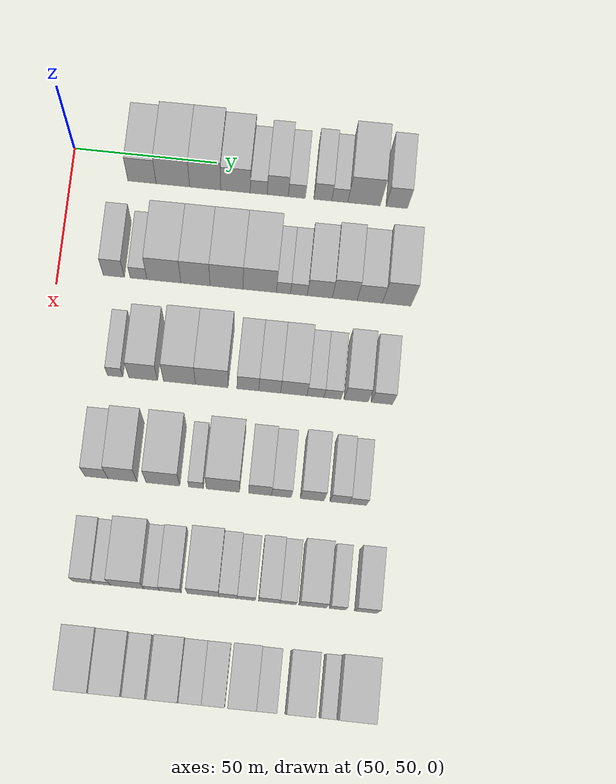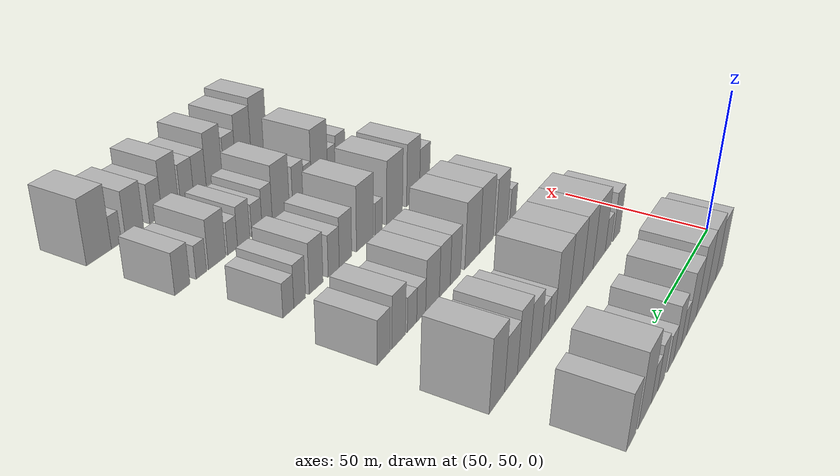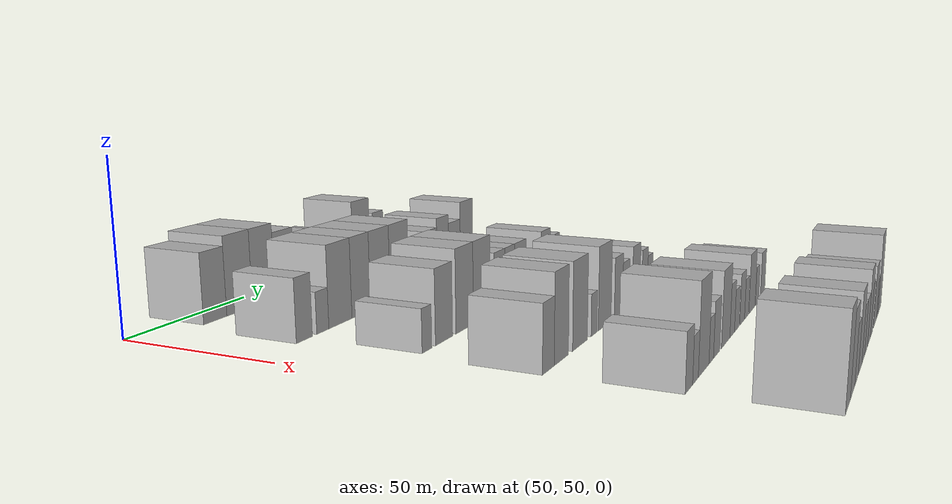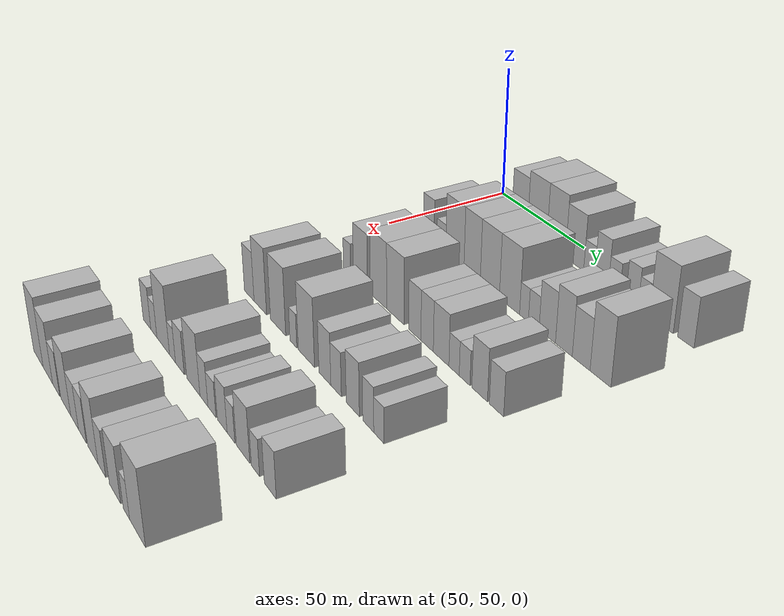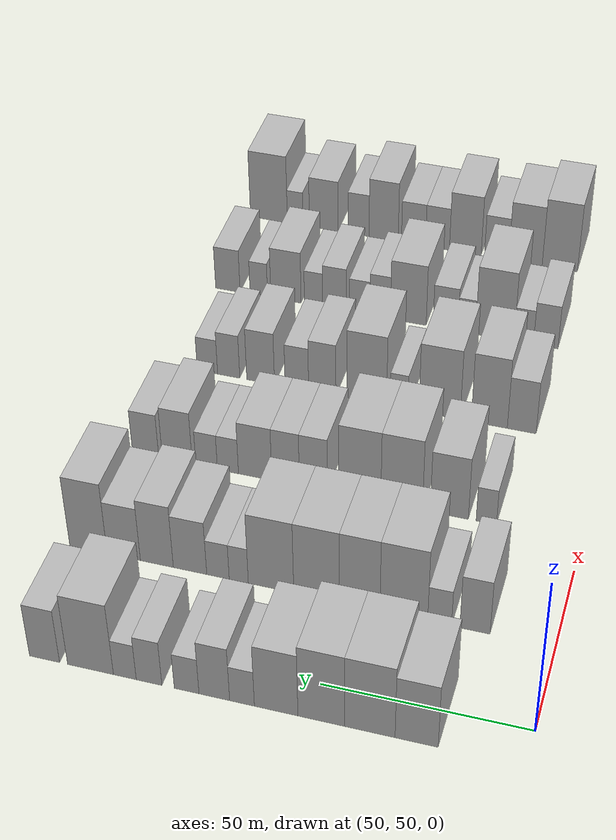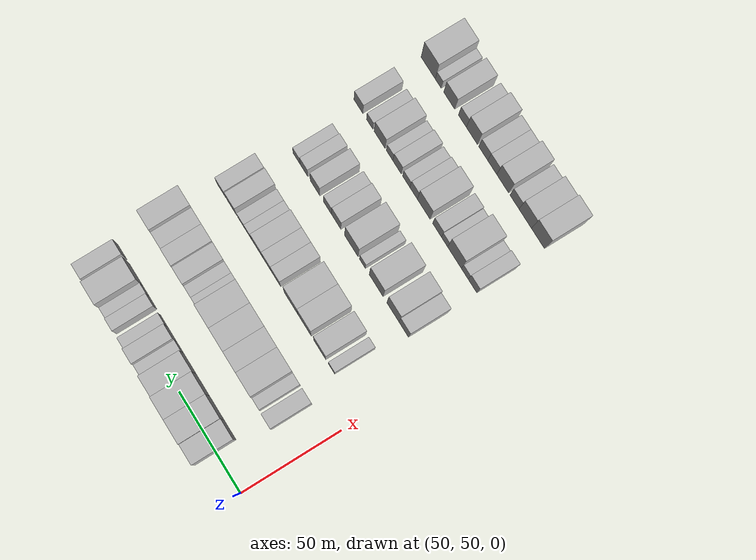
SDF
<sdf version="1.6">
 <world name="default">
  <model name="building_68">
   <static>1</static>
   <pose>50.0000 74.9641 0 0.000000 0.000000 0.000000</pose>
   <link name="link">
    <pose>0 0 10.50 0 0 0</pose>
    <collision name="collision"><geometry><box><size>20.0000 9.9061 21.0000</size></box></geometry></collision>
    <visual name="visual">
     <cast_shadows>0</cast_shadows>
     <geometry><box><size>20.0000 9.9061 21.0000</size></box></geometry>
     <material>
      <script>
       <uri>model://HANNAS_wall/materials/scripts</uri>
       <uri>model://HANNAS_wall/materials/textures</uri>
       <name>vrc/HANNAS_wall</name>
      </script>
     </material>
    </visual>
   </link>
  </model>
  <model name="building_69">
   <static>1</static>
   <pose>50.0000 85.7738 0 0.000000 0.000000 0.000000</pose>
   <link name="link">
    <pose>0 0 12.00 0 0 0</pose>
    <collision name="collision"><geometry><box><size>20.0000 11.7132 24.0000</size></box></geometry></collision>
    <visual name="visual">
     <cast_shadows>0</cast_shadows>
     <geometry><box><size>20.0000 11.7132 24.0000</size></box></geometry>
     <material>
      <script>
       <uri>model://HANNAS_wall/materials/scripts</uri>
       <uri>model://HANNAS_wall/materials/textures</uri>
       <name>vrc/HANNAS_wall</name>
      </script>
     </material>
    </visual>
   </link>
  </model>
  <model name="building_70">
   <static>1</static>
   <pose>50.0000 97.0943 0 0.000000 0.000000 0.000000</pose>
   <link name="link">
    <pose>0 0 12.00 0 0 0</pose>
    <collision name="collision"><geometry><box><size>20.0000 10.9279 24.0000</size></box></geometry></collision>
    <visual name="visual">
     <cast_shadows>0</cast_shadows>
     <geometry><box><size>20.0000 10.9279 24.0000</size></box></geometry>
     <material>
      <script>
       <uri>model://HANNAS_wall/materials/scripts</uri>
       <uri>model://HANNAS_wall/materials/textures</uri>
       <name>vrc/HANNAS_wall</name>
      </script>
     </material>
    </visual>
   </link>
  </model>
  <model name="building_71">
   <static>1</static>
   <pose>50.0000 107.7116 0 0.000000 0.000000 0.000000</pose>
   <link name="link">
    <pose>0 0 10.50 0 0 0</pose>
    <collision name="collision"><geometry><box><size>20.0000 10.3067 21.0000</size></box></geometry></collision>
    <visual name="visual">
     <cast_shadows>0</cast_shadows>
     <geometry><box><size>20.0000 10.3067 21.0000</size></box></geometry>
     <material>
      <script>
       <uri>model://HANNAS_wall/materials/scripts</uri>
       <uri>model://HANNAS_wall/materials/textures</uri>
       <name>vrc/HANNAS_wall</name>
      </script>
     </material>
    </visual>
   </link>
  </model>
  <model name="building_72">
   <static>1</static>
   <pose>50.0000 115.8207 0 0.000000 0.000000 0.000000</pose>
   <link name="link">
    <pose>0 0 6.00 0 0 0</pose>
    <collision name="collision"><geometry><box><size>20.0000 5.9115 12.0000</size></box></geometry></collision>
    <visual name="visual">
     <cast_shadows>0</cast_shadows>
     <geometry><box><size>20.0000 5.9115 12.0000</size></box></geometry>
     <material>
      <script>
       <uri>model://HANNAS_wall/materials/scripts</uri>
       <uri>model://HANNAS_wall/materials/textures</uri>
       <name>vrc/HANNAS_wall</name>
      </script>
     </material>
    </visual>
   </link>
  </model>
  <model name="building_73">
   <static>1</static>
   <pose>50.0000 122.4557 0 0.000000 0.000000 0.000000</pose>
   <link name="link">
    <pose>0 0 9.00 0 0 0</pose>
    <collision name="collision"><geometry><box><size>20.0000 7.3585 18.0000</size></box></geometry></collision>
    <visual name="visual">
     <cast_shadows>0</cast_shadows>
     <geometry><box><size>20.0000 7.3585 18.0000</size></box></geometry>
     <material>
      <script>
       <uri>model://HANNAS_wall/materials/scripts</uri>
       <uri>model://HANNAS_wall/materials/textures</uri>
       <name>vrc/HANNAS_wall</name>
      </script>
     </material>
    </visual>
   </link>
  </model>
  <model name="building_74">
   <static>1</static>
   <pose>50.0000 129.1196 0 0.000000 0.000000 0.000000</pose>
   <link name="link">
    <pose>0 0 6.00 0 0 0</pose>
    <collision name="collision"><geometry><box><size>20.0000 5.9692 12.0000</size></box></geometry></collision>
    <visual name="visual">
     <cast_shadows>0</cast_shadows>
     <geometry><box><size>20.0000 5.9692 12.0000</size></box></geometry>
     <material>
      <script>
       <uri>model://HANNAS_wall/materials/scripts</uri>
       <uri>model://HANNAS_wall/materials/textures</uri>
       <name>vrc/HANNAS_wall</name>
      </script>
     </material>
    </visual>
   </link>
  </model>
  <model name="building_75">
   <static>1</static>
   <pose>50.0000 138.2283 0 0.000000 0.000000 0.000000</pose>
   <link name="link">
    <pose>0 0 7.50 0 0 0</pose>
    <collision name="collision"><geometry><box><size>20.0000 6.2482 15.0000</size></box></geometry></collision>
    <visual name="visual">
     <cast_shadows>0</cast_shadows>
     <geometry><box><size>20.0000 6.2482 15.0000</size></box></geometry>
     <material>
      <script>
       <uri>model://HANNAS_wall/materials/scripts</uri>
       <uri>model://HANNAS_wall/materials/textures</uri>
       <name>vrc/HANNAS_wall</name>
      </script>
     </material>
    </visual>
   </link>
  </model>
  <model name="building_76">
   <static>1</static>
   <pose>50.0000 144.1504 0 0.000000 0.000000 0.000000</pose>
   <link name="link">
    <pose>0 0 6.00 0 0 0</pose>
    <collision name="collision"><geometry><box><size>20.0000 5.5962 12.0000</size></box></geometry></collision>
    <visual name="visual">
     <cast_shadows>0</cast_shadows>
     <geometry><box><size>20.0000 5.5962 12.0000</size></box></geometry>
     <material>
      <script>
       <uri>model://HANNAS_wall/materials/scripts</uri>
       <uri>model://HANNAS_wall/materials/textures</uri>
       <name>vrc/HANNAS_wall</name>
      </script>
     </material>
    </visual>
   </link>
  </model>
  <model name="building_77">
   <static>1</static>
   <pose>50.0000 152.6095 0 0.000000 0.000000 0.000000</pose>
   <link name="link">
    <pose>0 0 12.00 0 0 0</pose>
    <collision name="collision"><geometry><box><size>20.0000 11.3219 24.0000</size></box></geometry></collision>
    <visual name="visual">
     <cast_shadows>0</cast_shadows>
     <geometry><box><size>20.0000 11.3219 24.0000</size></box></geometry>
     <material>
      <script>
       <uri>model://HANNAS_wall/materials/scripts</uri>
       <uri>model://HANNAS_wall/materials/textures</uri>
       <name>vrc/HANNAS_wall</name>
      </script>
     </material>
    </visual>
   </link>
  </model>
  <model name="building_78">
   <static>1</static>
   <pose>50.0000 164.0153 0 0.000000 0.000000 0.000000</pose>
   <link name="link">
    <pose>0 0 9.00 0 0 0</pose>
    <collision name="collision"><geometry><box><size>20.0000 7.4899 18.0000</size></box></geometry></collision>
    <visual name="visual">
     <cast_shadows>0</cast_shadows>
     <geometry><box><size>20.0000 7.4899 18.0000</size></box></geometry>
     <material>
      <script>
       <uri>model://HANNAS_wall/materials/scripts</uri>
       <uri>model://HANNAS_wall/materials/textures</uri>
       <name>vrc/HANNAS_wall</name>
      </script>
     </material>
    </visual>
   </link>
  </model>
  <model name="building_201">
   <static>1</static>
   <pose>85.0000 69.3820 0 0.000000 0.000000 0.000000</pose>
   <link name="link">
    <pose>0 0 9.00 0 0 0</pose>
    <collision name="collision"><geometry><box><size>20.0000 7.2986 18.0000</size></box></geometry></collision>
    <visual name="visual">
     <cast_shadows>0</cast_shadows>
     <geometry><box><size>20.0000 7.2986 18.0000</size></box></geometry>
     <material>
      <script>
       <uri>model://HANNAS_wall/materials/scripts</uri>
       <uri>model://HANNAS_wall/materials/textures</uri>
       <name>vrc/HANNAS_wall</name>
      </script>
     </material>
    </visual>
   </link>
  </model>
  <model name="building_202">
   <static>1</static>
   <pose>85.0000 77.9362 0 0.000000 0.000000 0.000000</pose>
   <link name="link">
    <pose>0 0 6.00 0 0 0</pose>
    <collision name="collision"><geometry><box><size>20.0000 5.8098 12.0000</size></box></geometry></collision>
    <visual name="visual">
     <cast_shadows>0</cast_shadows>
     <geometry><box><size>20.0000 5.8098 12.0000</size></box></geometry>
     <material>
      <script>
       <uri>model://HANNAS_wall/materials/scripts</uri>
       <uri>model://HANNAS_wall/materials/textures</uri>
       <name>vrc/HANNAS_wall</name>
      </script>
     </material>
    </visual>
   </link>
  </model>
  <model name="building_203">
   <static>1</static>
   <pose>85.0000 86.6924 0 0.000000 0.000000 0.000000</pose>
   <link name="link">
    <pose>0 0 12.00 0 0 0</pose>
    <collision name="collision"><geometry><box><size>20.0000 11.7027 24.0000</size></box></geometry></collision>
    <visual name="visual">
     <cast_shadows>0</cast_shadows>
     <geometry><box><size>20.0000 11.7027 24.0000</size></box></geometry>
     <material>
      <script>
       <uri>model://HANNAS_wall/materials/scripts</uri>
       <uri>model://HANNAS_wall/materials/textures</uri>
       <name>vrc/HANNAS_wall</name>
      </script>
     </material>
    </visual>
   </link>
  </model>
  <model name="building_204">
   <static>1</static>
   <pose>85.0000 97.5682 0 0.000000 0.000000 0.000000</pose>
   <link name="link">
    <pose>0 0 12.00 0 0 0</pose>
    <collision name="collision"><geometry><box><size>20.0000 10.0490 24.0000</size></box></geometry></collision>
    <visual name="visual">
     <cast_shadows>0</cast_shadows>
     <geometry><box><size>20.0000 10.0490 24.0000</size></box></geometry>
     <material>
      <script>
       <uri>model://HANNAS_wall/materials/scripts</uri>
       <uri>model://HANNAS_wall/materials/textures</uri>
       <name>vrc/HANNAS_wall</name>
      </script>
     </material>
    </visual>
   </link>
  </model>
  <model name="building_205">
   <static>1</static>
   <pose>85.0000 108.2887 0 0.000000 0.000000 0.000000</pose>
   <link name="link">
    <pose>0 0 12.00 0 0 0</pose>
    <collision name="collision"><geometry><box><size>20.0000 11.3919 24.0000</size></box></geometry></collision>
    <visual name="visual">
     <cast_shadows>0</cast_shadows>
     <geometry><box><size>20.0000 11.3919 24.0000</size></box></geometry>
     <material>
      <script>
       <uri>model://HANNAS_wall/materials/scripts</uri>
       <uri>model://HANNAS_wall/materials/textures</uri>
       <name>vrc/HANNAS_wall</name>
      </script>
     </material>
    </visual>
   </link>
  </model>
  <model name="building_206">
   <static>1</static>
   <pose>85.0000 119.7215 0 0.000000 0.000000 0.000000</pose>
   <link name="link">
    <pose>0 0 12.00 0 0 0</pose>
    <collision name="collision"><geometry><box><size>20.0000 11.4736 24.0000</size></box></geometry></collision>
    <visual name="visual">
     <cast_shadows>0</cast_shadows>
     <geometry><box><size>20.0000 11.4736 24.0000</size></box></geometry>
     <material>
      <script>
       <uri>model://HANNAS_wall/materials/scripts</uri>
       <uri>model://HANNAS_wall/materials/textures</uri>
       <name>vrc/HANNAS_wall</name>
      </script>
     </material>
    </visual>
   </link>
  </model>
  <model name="building_207">
   <static>1</static>
   <pose>85.0000 127.8853 0 0.000000 0.000000 0.000000</pose>
   <link name="link">
    <pose>0 0 6.00 0 0 0</pose>
    <collision name="collision"><geometry><box><size>20.0000 4.8541 12.0000</size></box></geometry></collision>
    <visual name="visual">
     <cast_shadows>0</cast_shadows>
     <geometry><box><size>20.0000 4.8541 12.0000</size></box></geometry>
     <material>
      <script>
       <uri>model://HANNAS_wall/materials/scripts</uri>
       <uri>model://HANNAS_wall/materials/textures</uri>
       <name>vrc/HANNAS_wall</name>
      </script>
     </material>
    </visual>
   </link>
  </model>
  <model name="building_208">
   <static>1</static>
   <pose>85.0000 133.1812 0 0.000000 0.000000 0.000000</pose>
   <link name="link">
    <pose>0 0 6.00 0 0 0</pose>
    <collision name="collision"><geometry><box><size>20.0000 5.7376 12.0000</size></box></geometry></collision>
    <visual name="visual">
     <cast_shadows>0</cast_shadows>
     <geometry><box><size>20.0000 5.7376 12.0000</size></box></geometry>
     <material>
      <script>
       <uri>model://HANNAS_wall/materials/scripts</uri>
       <uri>model://HANNAS_wall/materials/textures</uri>
       <name>vrc/HANNAS_wall</name>
      </script>
     </material>
    </visual>
   </link>
  </model>
  <model name="building_209">
   <static>1</static>
   <pose>85.0000 140.3488 0 0.000000 0.000000 0.000000</pose>
   <link name="link">
    <pose>0 0 9.00 0 0 0</pose>
    <collision name="collision"><geometry><box><size>20.0000 8.5977 18.0000</size></box></geometry></collision>
    <visual name="visual">
     <cast_shadows>0</cast_shadows>
     <geometry><box><size>20.0000 8.5977 18.0000</size></box></geometry>
     <material>
      <script>
       <uri>model://HANNAS_wall/materials/scripts</uri>
       <uri>model://HANNAS_wall/materials/textures</uri>
       <name>vrc/HANNAS_wall</name>
      </script>
     </material>
    </visual>
   </link>
  </model>
  <model name="building_210">
   <static>1</static>
   <pose>85.0000 148.9091 0 0.000000 0.000000 0.000000</pose>
   <link name="link">
    <pose>0 0 10.50 0 0 0</pose>
    <collision name="collision"><geometry><box><size>20.0000 8.5228 21.0000</size></box></geometry></collision>
    <visual name="visual">
     <cast_shadows>0</cast_shadows>
     <geometry><box><size>20.0000 8.5228 21.0000</size></box></geometry>
     <material>
      <script>
       <uri>model://HANNAS_wall/materials/scripts</uri>
       <uri>model://HANNAS_wall/materials/textures</uri>
       <name>vrc/HANNAS_wall</name>
      </script>
     </material>
    </visual>
   </link>
  </model>
  <model name="building_211">
   <static>1</static>
   <pose>85.0000 157.5111 0 0.000000 0.000000 0.000000</pose>
   <link name="link">
    <pose>0 0 9.00 0 0 0</pose>
    <collision name="collision"><geometry><box><size>20.0000 8.6812 18.0000</size></box></geometry></collision>
    <visual name="visual">
     <cast_shadows>0</cast_shadows>
     <geometry><box><size>20.0000 8.6812 18.0000</size></box></geometry>
     <material>
      <script>
       <uri>model://HANNAS_wall/materials/scripts</uri>
       <uri>model://HANNAS_wall/materials/textures</uri>
       <name>vrc/HANNAS_wall</name>
      </script>
     </material>
    </visual>
   </link>
  </model>
  <model name="building_212">
   <static>1</static>
   <pose>85.0000 166.7705 0 0.000000 0.000000 0.000000</pose>
   <link name="link">
    <pose>0 0 12.00 0 0 0</pose>
    <collision name="collision"><geometry><box><size>20.0000 9.8376 24.0000</size></box></geometry></collision>
    <visual name="visual">
     <cast_shadows>0</cast_shadows>
     <geometry><box><size>20.0000 9.8376 24.0000</size></box></geometry>
     <material>
      <script>
       <uri>model://HANNAS_wall/materials/scripts</uri>
       <uri>model://HANNAS_wall/materials/textures</uri>
       <name>vrc/HANNAS_wall</name>
      </script>
     </material>
    </visual>
   </link>
  </model>
  <model name="building_329">
   <static>1</static>
   <pose>120.0000 74.1972 0 0.000000 0.000000 0.000000</pose>
   <link name="link">
    <pose>0 0 6.00 0 0 0</pose>
    <collision name="collision"><geometry><box><size>20.0000 5.2003 12.0000</size></box></geometry></collision>
    <visual name="visual">
     <cast_shadows>0</cast_shadows>
     <geometry><box><size>20.0000 5.2003 12.0000</size></box></geometry>
     <material>
      <script>
       <uri>model://HANNAS_wall/materials/scripts</uri>
       <uri>model://HANNAS_wall/materials/textures</uri>
       <name>vrc/HANNAS_wall</name>
      </script>
     </material>
    </visual>
   </link>
  </model>
  <model name="building_330">
   <static>1</static>
   <pose>120.0000 83.7045 0 0.000000 0.000000 0.000000</pose>
   <link name="link">
    <pose>0 0 10.50 0 0 0</pose>
    <collision name="collision"><geometry><box><size>20.0000 9.8144 21.0000</size></box></geometry></collision>
    <visual name="visual">
     <cast_shadows>0</cast_shadows>
     <geometry><box><size>20.0000 9.8144 21.0000</size></box></geometry>
     <material>
      <script>
       <uri>model://HANNAS_wall/materials/scripts</uri>
       <uri>model://HANNAS_wall/materials/textures</uri>
       <name>vrc/HANNAS_wall</name>
      </script>
     </material>
    </visual>
   </link>
  </model>
  <model name="building_331">
   <static>1</static>
   <pose>120.0000 96.0286 0 0.000000 0.000000 0.000000</pose>
   <link name="link">
    <pose>0 0 12.00 0 0 0</pose>
    <collision name="collision"><geometry><box><size>20.0000 10.8338 24.0000</size></box></geometry></collision>
    <visual name="visual">
     <cast_shadows>0</cast_shadows>
     <geometry><box><size>20.0000 10.8338 24.0000</size></box></geometry>
     <material>
      <script>
       <uri>model://HANNAS_wall/materials/scripts</uri>
       <uri>model://HANNAS_wall/materials/textures</uri>
       <name>vrc/HANNAS_wall</name>
      </script>
     </material>
    </visual>
   </link>
  </model>
  <model name="building_332">
   <static>1</static>
   <pose>120.0000 106.9835 0 0.000000 0.000000 0.000000</pose>
   <link name="link">
    <pose>0 0 12.00 0 0 0</pose>
    <collision name="collision"><geometry><box><size>20.0000 11.0759 24.0000</size></box></geometry></collision>
    <visual name="visual">
     <cast_shadows>0</cast_shadows>
     <geometry><box><size>20.0000 11.0759 24.0000</size></box></geometry>
     <material>
      <script>
       <uri>model://HANNAS_wall/materials/scripts</uri>
       <uri>model://HANNAS_wall/materials/textures</uri>
       <name>vrc/HANNAS_wall</name>
      </script>
     </material>
    </visual>
   </link>
  </model>
  <model name="building_333">
   <static>1</static>
   <pose>120.0000 119.2204 0 0.000000 0.000000 0.000000</pose>
   <link name="link">
    <pose>0 0 9.00 0 0 0</pose>
    <collision name="collision"><geometry><box><size>20.0000 7.3979 18.0000</size></box></geometry></collision>
    <visual name="visual">
     <cast_shadows>0</cast_shadows>
     <geometry><box><size>20.0000 7.3979 18.0000</size></box></geometry>
     <material>
      <script>
       <uri>model://HANNAS_wall/materials/scripts</uri>
       <uri>model://HANNAS_wall/materials/textures</uri>
       <name>vrc/HANNAS_wall</name>
      </script>
     </material>
    </visual>
   </link>
  </model>
  <model name="building_334">
   <static>1</static>
   <pose>120.0000 126.6015 0 0.000000 0.000000 0.000000</pose>
   <link name="link">
    <pose>0 0 9.00 0 0 0</pose>
    <collision name="collision"><geometry><box><size>20.0000 7.3642 18.0000</size></box></geometry></collision>
    <visual name="visual">
     <cast_shadows>0</cast_shadows>
     <geometry><box><size>20.0000 7.3642 18.0000</size></box></geometry>
     <material>
      <script>
       <uri>model://HANNAS_wall/materials/scripts</uri>
       <uri>model://HANNAS_wall/materials/textures</uri>
       <name>vrc/HANNAS_wall</name>
      </script>
     </material>
    </visual>
   </link>
  </model>
  <model name="building_335">
   <static>1</static>
   <pose>120.0000 134.7657 0 0.000000 0.000000 0.000000</pose>
   <link name="link">
    <pose>0 0 9.00 0 0 0</pose>
    <collision name="collision"><geometry><box><size>20.0000 8.9643 18.0000</size></box></geometry></collision>
    <visual name="visual">
     <cast_shadows>0</cast_shadows>
     <geometry><box><size>20.0000 8.9643 18.0000</size></box></geometry>
     <material>
      <script>
       <uri>model://HANNAS_wall/materials/scripts</uri>
       <uri>model://HANNAS_wall/materials/textures</uri>
       <name>vrc/HANNAS_wall</name>
      </script>
     </material>
    </visual>
   </link>
  </model>
  <model name="building_336">
   <static>1</static>
   <pose>120.0000 142.0929 0 0.000000 0.000000 0.000000</pose>
   <link name="link">
    <pose>0 0 6.00 0 0 0</pose>
    <collision name="collision"><geometry><box><size>20.0000 5.6899 12.0000</size></box></geometry></collision>
    <visual name="visual">
     <cast_shadows>0</cast_shadows>
     <geometry><box><size>20.0000 5.6899 12.0000</size></box></geometry>
     <material>
      <script>
       <uri>model://HANNAS_wall/materials/scripts</uri>
       <uri>model://HANNAS_wall/materials/textures</uri>
       <name>vrc/HANNAS_wall</name>
      </script>
     </material>
    </visual>
   </link>
  </model>
  <model name="building_337">
   <static>1</static>
   <pose>120.0000 147.8552 0 0.000000 0.000000 0.000000</pose>
   <link name="link">
    <pose>0 0 6.00 0 0 0</pose>
    <collision name="collision"><geometry><box><size>20.0000 5.8348 12.0000</size></box></geometry></collision>
    <visual name="visual">
     <cast_shadows>0</cast_shadows>
     <geometry><box><size>20.0000 5.8348 12.0000</size></box></geometry>
     <material>
      <script>
       <uri>model://HANNAS_wall/materials/scripts</uri>
       <uri>model://HANNAS_wall/materials/textures</uri>
       <name>vrc/HANNAS_wall</name>
      </script>
     </material>
    </visual>
   </link>
  </model>
  <model name="building_338">
   <static>1</static>
   <pose>120.0000 155.8587 0 0.000000 0.000000 0.000000</pose>
   <link name="link">
    <pose>0 0 9.00 0 0 0</pose>
    <collision name="collision"><geometry><box><size>20.0000 8.1721 18.0000</size></box></geometry></collision>
    <visual name="visual">
     <cast_shadows>0</cast_shadows>
     <geometry><box><size>20.0000 8.1721 18.0000</size></box></geometry>
     <material>
      <script>
       <uri>model://HANNAS_wall/materials/scripts</uri>
       <uri>model://HANNAS_wall/materials/textures</uri>
       <name>vrc/HANNAS_wall</name>
      </script>
     </material>
    </visual>
   </link>
  </model>
  <model name="building_339">
   <static>1</static>
   <pose>120.0000 164.5496 0 0.000000 0.000000 0.000000</pose>
   <link name="link">
    <pose>0 0 7.50 0 0 0</pose>
    <collision name="collision"><geometry><box><size>20.0000 7.2098 15.0000</size></box></geometry></collision>
    <visual name="visual">
     <cast_shadows>0</cast_shadows>
     <geometry><box><size>20.0000 7.2098 15.0000</size></box></geometry>
     <material>
      <script>
       <uri>model://HANNAS_wall/materials/scripts</uri>
       <uri>model://HANNAS_wall/materials/textures</uri>
       <name>vrc/HANNAS_wall</name>
      </script>
     </material>
    </visual>
   </link>
  </model>
  <model name="building_452">
   <static>1</static>
   <pose>155.0000 72.2311 0 0.000000 0.000000 0.000000</pose>
   <link name="link">
    <pose>0 0 9.00 0 0 0</pose>
    <collision name="collision"><geometry><box><size>20.0000 7.7263 18.0000</size></box></geometry></collision>
    <visual name="visual">
     <cast_shadows>0</cast_shadows>
     <geometry><box><size>20.0000 7.7263 18.0000</size></box></geometry>
     <material>
      <script>
       <uri>model://HANNAS_wall/materials/scripts</uri>
       <uri>model://HANNAS_wall/materials/textures</uri>
       <name>vrc/HANNAS_wall</name>
      </script>
     </material>
    </visual>
   </link>
  </model>
  <model name="building_453">
   <static>1</static>
   <pose>155.0000 80.9639 0 0.000000 0.000000 0.000000</pose>
   <link name="link">
    <pose>0 0 12.00 0 0 0</pose>
    <collision name="collision"><geometry><box><size>20.0000 9.7393 24.0000</size></box></geometry></collision>
    <visual name="visual">
     <cast_shadows>0</cast_shadows>
     <geometry><box><size>20.0000 9.7393 24.0000</size></box></geometry>
     <material>
      <script>
       <uri>model://HANNAS_wall/materials/scripts</uri>
       <uri>model://HANNAS_wall/materials/textures</uri>
       <name>vrc/HANNAS_wall</name>
      </script>
     </material>
    </visual>
   </link>
  </model>
  <model name="building_454">
   <static>1</static>
   <pose>155.0000 94.4647 0 0.000000 0.000000 0.000000</pose>
   <link name="link">
    <pose>0 0 12.00 0 0 0</pose>
    <collision name="collision"><geometry><box><size>20.0000 11.2622 24.0000</size></box></geometry></collision>
    <visual name="visual">
     <cast_shadows>0</cast_shadows>
     <geometry><box><size>20.0000 11.2622 24.0000</size></box></geometry>
     <material>
      <script>
       <uri>model://HANNAS_wall/materials/scripts</uri>
       <uri>model://HANNAS_wall/materials/textures</uri>
       <name>vrc/HANNAS_wall</name>
      </script>
     </material>
    </visual>
   </link>
  </model>
  <model name="building_455">
   <static>1</static>
   <pose>155.0000 105.5414 0 0.000000 0.000000 0.000000</pose>
   <link name="link">
    <pose>0 0 6.00 0 0 0</pose>
    <collision name="collision"><geometry><box><size>20.0000 4.8913 12.0000</size></box></geometry></collision>
    <visual name="visual">
     <cast_shadows>0</cast_shadows>
     <geometry><box><size>20.0000 4.8913 12.0000</size></box></geometry>
     <material>
      <script>
       <uri>model://HANNAS_wall/materials/scripts</uri>
       <uri>model://HANNAS_wall/materials/textures</uri>
       <name>vrc/HANNAS_wall</name>
      </script>
     </material>
    </visual>
   </link>
  </model>
  <model name="building_456">
   <static>1</static>
   <pose>155.0000 114.5159 0 0.000000 0.000000 0.000000</pose>
   <link name="link">
    <pose>0 0 12.00 0 0 0</pose>
    <collision name="collision"><geometry><box><size>20.0000 11.0577 24.0000</size></box></geometry></collision>
    <visual name="visual">
     <cast_shadows>0</cast_shadows>
     <geometry><box><size>20.0000 11.0577 24.0000</size></box></geometry>
     <material>
      <script>
       <uri>model://HANNAS_wall/materials/scripts</uri>
       <uri>model://HANNAS_wall/materials/textures</uri>
       <name>vrc/HANNAS_wall</name>
      </script>
     </material>
    </visual>
   </link>
  </model>
  <model name="building_457">
   <static>1</static>
   <pose>155.0000 126.8664 0 0.000000 0.000000 0.000000</pose>
   <link name="link">
    <pose>0 0 9.00 0 0 0</pose>
    <collision name="collision"><geometry><box><size>20.0000 7.6432 18.0000</size></box></geometry></collision>
    <visual name="visual">
     <cast_shadows>0</cast_shadows>
     <geometry><box><size>20.0000 7.6432 18.0000</size></box></geometry>
     <material>
      <script>
       <uri>model://HANNAS_wall/materials/scripts</uri>
       <uri>model://HANNAS_wall/materials/textures</uri>
       <name>vrc/HANNAS_wall</name>
      </script>
     </material>
    </visual>
   </link>
  </model>
  <model name="building_458">
   <static>1</static>
   <pose>155.0000 133.9882 0 0.000000 0.000000 0.000000</pose>
   <link name="link">
    <pose>0 0 7.50 0 0 0</pose>
    <collision name="collision"><geometry><box><size>20.0000 6.6005 15.0000</size></box></geometry></collision>
    <visual name="visual">
     <cast_shadows>0</cast_shadows>
     <geometry><box><size>20.0000 6.6005 15.0000</size></box></geometry>
     <material>
      <script>
       <uri>model://HANNAS_wall/materials/scripts</uri>
       <uri>model://HANNAS_wall/materials/textures</uri>
       <name>vrc/HANNAS_wall</name>
      </script>
     </material>
    </visual>
   </link>
  </model>
  <model name="building_459">
   <static>1</static>
   <pose>155.0000 144.2292 0 0.000000 0.000000 0.000000</pose>
   <link name="link">
    <pose>0 0 9.00 0 0 0</pose>
    <collision name="collision"><geometry><box><size>20.0000 7.8814 18.0000</size></box></geometry></collision>
    <visual name="visual">
     <cast_shadows>0</cast_shadows>
     <geometry><box><size>20.0000 7.8814 18.0000</size></box></geometry>
     <material>
      <script>
       <uri>model://HANNAS_wall/materials/scripts</uri>
       <uri>model://HANNAS_wall/materials/textures</uri>
       <name>vrc/HANNAS_wall</name>
      </script>
     </material>
    </visual>
   </link>
  </model>
  <model name="building_460">
   <static>1</static>
   <pose>155.0000 153.3386 0 0.000000 0.000000 0.000000</pose>
   <link name="link">
    <pose>0 0 7.50 0 0 0</pose>
    <collision name="collision"><geometry><box><size>20.0000 6.3374 15.0000</size></box></geometry></collision>
    <visual name="visual">
     <cast_shadows>0</cast_shadows>
     <geometry><box><size>20.0000 6.3374 15.0000</size></box></geometry>
     <material>
      <script>
       <uri>model://HANNAS_wall/materials/scripts</uri>
       <uri>model://HANNAS_wall/materials/textures</uri>
       <name>vrc/HANNAS_wall</name>
      </script>
     </material>
    </visual>
   </link>
  </model>
  <model name="building_461">
   <static>1</static>
   <pose>155.0000 159.4187 0 0.000000 0.000000 0.000000</pose>
   <link name="link">
    <pose>0 0 6.00 0 0 0</pose>
    <collision name="collision"><geometry><box><size>20.0000 5.8229 12.0000</size></box></geometry></collision>
    <visual name="visual">
     <cast_shadows>0</cast_shadows>
     <geometry><box><size>20.0000 5.8229 12.0000</size></box></geometry>
     <material>
      <script>
       <uri>model://HANNAS_wall/materials/scripts</uri>
       <uri>model://HANNAS_wall/materials/textures</uri>
       <name>vrc/HANNAS_wall</name>
      </script>
     </material>
    </visual>
   </link>
  </model>
  <model name="building_576">
   <static>1</static>
   <pose>190.0000 72.5031 0 0.000000 0.000000 0.000000</pose>
   <link name="link">
    <pose>0 0 7.50 0 0 0</pose>
    <collision name="collision"><geometry><box><size>20.0000 6.8897 15.0000</size></box></geometry></collision>
    <visual name="visual">
     <cast_shadows>0</cast_shadows>
     <geometry><box><size>20.0000 6.8897 15.0000</size></box></geometry>
     <material>
      <script>
       <uri>model://HANNAS_wall/materials/scripts</uri>
       <uri>model://HANNAS_wall/materials/textures</uri>
       <name>vrc/HANNAS_wall</name>
      </script>
     </material>
    </visual>
   </link>
  </model>
  <model name="building_577">
   <static>1</static>
   <pose>190.0000 78.6983 0 0.000000 0.000000 0.000000</pose>
   <link name="link">
    <pose>0 0 6.00 0 0 0</pose>
    <collision name="collision"><geometry><box><size>20.0000 5.5007 12.0000</size></box></geometry></collision>
    <visual name="visual">
     <cast_shadows>0</cast_shadows>
     <geometry><box><size>20.0000 5.5007 12.0000</size></box></geometry>
     <material>
      <script>
       <uri>model://HANNAS_wall/materials/scripts</uri>
       <uri>model://HANNAS_wall/materials/textures</uri>
       <name>vrc/HANNAS_wall</name>
      </script>
     </material>
    </visual>
   </link>
  </model>
  <model name="building_578">
   <static>1</static>
   <pose>190.0000 86.9355 0 0.000000 0.000000 0.000000</pose>
   <link name="link">
    <pose>0 0 12.00 0 0 0</pose>
    <collision name="collision"><geometry><box><size>20.0000 10.9738 24.0000</size></box></geometry></collision>
    <visual name="visual">
     <cast_shadows>0</cast_shadows>
     <geometry><box><size>20.0000 10.9738 24.0000</size></box></geometry>
     <material>
      <script>
       <uri>model://HANNAS_wall/materials/scripts</uri>
       <uri>model://HANNAS_wall/materials/textures</uri>
       <name>vrc/HANNAS_wall</name>
      </script>
     </material>
    </visual>
   </link>
  </model>
  <model name="building_579">
   <static>1</static>
   <pose>190.0000 94.9170 0 0.000000 0.000000 0.000000</pose>
   <link name="link">
    <pose>0 0 6.00 0 0 0</pose>
    <collision name="collision"><geometry><box><size>20.0000 4.9892 12.0000</size></box></geometry></collision>
    <visual name="visual">
     <cast_shadows>0</cast_shadows>
     <geometry><box><size>20.0000 4.9892 12.0000</size></box></geometry>
     <material>
      <script>
       <uri>model://HANNAS_wall/materials/scripts</uri>
       <uri>model://HANNAS_wall/materials/textures</uri>
       <name>vrc/HANNAS_wall</name>
      </script>
     </material>
    </visual>
   </link>
  </model>
  <model name="building_580">
   <static>1</static>
   <pose>190.0000 100.9817 0 0.000000 0.000000 0.000000</pose>
   <link name="link">
    <pose>0 0 7.50 0 0 0</pose>
    <collision name="collision"><geometry><box><size>20.0000 7.1401 15.0000</size></box></geometry></collision>
    <visual name="visual">
     <cast_shadows>0</cast_shadows>
     <geometry><box><size>20.0000 7.1401 15.0000</size></box></geometry>
     <material>
      <script>
       <uri>model://HANNAS_wall/materials/scripts</uri>
       <uri>model://HANNAS_wall/materials/textures</uri>
       <name>vrc/HANNAS_wall</name>
      </script>
     </material>
    </visual>
   </link>
  </model>
  <model name="building_581">
   <static>1</static>
   <pose>190.0000 111.7265 0 0.000000 0.000000 0.000000</pose>
   <link name="link">
    <pose>0 0 10.50 0 0 0</pose>
    <collision name="collision"><geometry><box><size>20.0000 10.3494 21.0000</size></box></geometry></collision>
    <visual name="visual">
     <cast_shadows>0</cast_shadows>
     <geometry><box><size>20.0000 10.3494 21.0000</size></box></geometry>
     <material>
      <script>
       <uri>model://HANNAS_wall/materials/scripts</uri>
       <uri>model://HANNAS_wall/materials/textures</uri>
       <name>vrc/HANNAS_wall</name>
      </script>
     </material>
    </visual>
   </link>
  </model>
  <model name="building_582">
   <static>1</static>
   <pose>190.0000 119.9091 0 0.000000 0.000000 0.000000</pose>
   <link name="link">
    <pose>0 0 7.50 0 0 0</pose>
    <collision name="collision"><geometry><box><size>20.0000 6.0157 15.0000</size></box></geometry></collision>
    <visual name="visual">
     <cast_shadows>0</cast_shadows>
     <geometry><box><size>20.0000 6.0157 15.0000</size></box></geometry>
     <material>
      <script>
       <uri>model://HANNAS_wall/materials/scripts</uri>
       <uri>model://HANNAS_wall/materials/textures</uri>
       <name>vrc/HANNAS_wall</name>
      </script>
     </material>
    </visual>
   </link>
  </model>
  <model name="building_583">
   <static>1</static>
   <pose>190.0000 125.8890 0 0.000000 0.000000 0.000000</pose>
   <link name="link">
    <pose>0 0 6.00 0 0 0</pose>
    <collision name="collision"><geometry><box><size>20.0000 5.9442 12.0000</size></box></geometry></collision>
    <visual name="visual">
     <cast_shadows>0</cast_shadows>
     <geometry><box><size>20.0000 5.9442 12.0000</size></box></geometry>
     <material>
      <script>
       <uri>model://HANNAS_wall/materials/scripts</uri>
       <uri>model://HANNAS_wall/materials/textures</uri>
       <name>vrc/HANNAS_wall</name>
      </script>
     </material>
    </visual>
   </link>
  </model>
  <model name="building_584">
   <static>1</static>
   <pose>190.0000 133.3104 0 0.000000 0.000000 0.000000</pose>
   <link name="link">
    <pose>0 0 7.50 0 0 0</pose>
    <collision name="collision"><geometry><box><size>20.0000 6.8986 15.0000</size></box></geometry></collision>
    <visual name="visual">
     <cast_shadows>0</cast_shadows>
     <geometry><box><size>20.0000 6.8986 15.0000</size></box></geometry>
     <material>
      <script>
       <uri>model://HANNAS_wall/materials/scripts</uri>
       <uri>model://HANNAS_wall/materials/textures</uri>
       <name>vrc/HANNAS_wall</name>
      </script>
     </material>
    </visual>
   </link>
  </model>
  <model name="building_585">
   <static>1</static>
   <pose>190.0000 139.4452 0 0.000000 0.000000 0.000000</pose>
   <link name="link">
    <pose>0 0 6.00 0 0 0</pose>
    <collision name="collision"><geometry><box><size>20.0000 5.3711 12.0000</size></box></geometry></collision>
    <visual name="visual">
     <cast_shadows>0</cast_shadows>
     <geometry><box><size>20.0000 5.3711 12.0000</size></box></geometry>
     <material>
      <script>
       <uri>model://HANNAS_wall/materials/scripts</uri>
       <uri>model://HANNAS_wall/materials/textures</uri>
       <name>vrc/HANNAS_wall</name>
      </script>
     </material>
    </visual>
   </link>
  </model>
  <model name="building_586">
   <static>1</static>
   <pose>190.0000 147.6236 0 0.000000 0.000000 0.000000</pose>
   <link name="link">
    <pose>0 0 9.00 0 0 0</pose>
    <collision name="collision"><geometry><box><size>20.0000 8.9856 18.0000</size></box></geometry></collision>
    <visual name="visual">
     <cast_shadows>0</cast_shadows>
     <geometry><box><size>20.0000 8.9856 18.0000</size></box></geometry>
     <material>
      <script>
       <uri>model://HANNAS_wall/materials/scripts</uri>
       <uri>model://HANNAS_wall/materials/textures</uri>
       <name>vrc/HANNAS_wall</name>
      </script>
     </material>
    </visual>
   </link>
  </model>
  <model name="building_587">
   <static>1</static>
   <pose>190.0000 155.7329 0 0.000000 0.000000 0.000000</pose>
   <link name="link">
    <pose>0 0 6.00 0 0 0</pose>
    <collision name="collision"><geometry><box><size>20.0000 5.2331 12.0000</size></box></geometry></collision>
    <visual name="visual">
     <cast_shadows>0</cast_shadows>
     <geometry><box><size>20.0000 5.2331 12.0000</size></box></geometry>
     <material>
      <script>
       <uri>model://HANNAS_wall/materials/scripts</uri>
       <uri>model://HANNAS_wall/materials/textures</uri>
       <name>vrc/HANNAS_wall</name>
      </script>
     </material>
    </visual>
   </link>
  </model>
  <model name="building_588">
   <static>1</static>
   <pose>190.0000 165.0204 0 0.000000 0.000000 0.000000</pose>
   <link name="link">
    <pose>0 0 7.50 0 0 0</pose>
    <collision name="collision"><geometry><box><size>20.0000 7.3418 15.0000</size></box></geometry></collision>
    <visual name="visual">
     <cast_shadows>0</cast_shadows>
     <geometry><box><size>20.0000 7.3418 15.0000</size></box></geometry>
     <material>
      <script>
       <uri>model://HANNAS_wall/materials/scripts</uri>
       <uri>model://HANNAS_wall/materials/textures</uri>
       <name>vrc/HANNAS_wall</name>
      </script>
     </material>
    </visual>
   </link>
  </model>
  <model name="building_694">
   <static>1</static>
   <pose>225.0000 75.0532 0 0.000000 0.000000 0.000000</pose>
   <link name="link">
    <pose>0 0 12.00 0 0 0</pose>
    <collision name="collision"><geometry><box><size>20.0000 10.3779 24.0000</size></box></geometry></collision>
    <visual name="visual">
     <cast_shadows>0</cast_shadows>
     <geometry><box><size>20.0000 10.3779 24.0000</size></box></geometry>
     <material>
      <script>
       <uri>model://HANNAS_wall/materials/scripts</uri>
       <uri>model://HANNAS_wall/materials/textures</uri>
       <name>vrc/HANNAS_wall</name>
      </script>
     </material>
    </visual>
   </link>
  </model>
  <model name="building_695">
   <static>1</static>
   <pose>225.0000 85.2078 0 0.000000 0.000000 0.000000</pose>
   <link name="link">
    <pose>0 0 10.50 0 0 0</pose>
    <collision name="collision"><geometry><box><size>20.0000 9.9313 21.0000</size></box></geometry></collision>
    <visual name="visual">
     <cast_shadows>0</cast_shadows>
     <geometry><box><size>20.0000 9.9313 21.0000</size></box></geometry>
     <material>
      <script>
       <uri>model://HANNAS_wall/materials/scripts</uri>
       <uri>model://HANNAS_wall/materials/textures</uri>
       <name>vrc/HANNAS_wall</name>
      </script>
     </material>
    </visual>
   </link>
  </model>
  <model name="building_696">
   <static>1</static>
   <pose>225.0000 93.7971 0 0.000000 0.000000 0.000000</pose>
   <link name="link">
    <pose>0 0 7.50 0 0 0</pose>
    <collision name="collision"><geometry><box><size>20.0000 7.2473 15.0000</size></box></geometry></collision>
    <visual name="visual">
     <cast_shadows>0</cast_shadows>
     <geometry><box><size>20.0000 7.2473 15.0000</size></box></geometry>
     <material>
      <script>
       <uri>model://HANNAS_wall/materials/scripts</uri>
       <uri>model://HANNAS_wall/materials/textures</uri>
       <name>vrc/HANNAS_wall</name>
      </script>
     </material>
    </visual>
   </link>
  </model>
  <model name="building_697">
   <static>1</static>
   <pose>225.0000 103.1914 0 0.000000 0.000000 0.000000</pose>
   <link name="link">
    <pose>0 0 10.50 0 0 0</pose>
    <collision name="collision"><geometry><box><size>20.0000 9.5412 21.0000</size></box></geometry></collision>
    <visual name="visual">
     <cast_shadows>0</cast_shadows>
     <geometry><box><size>20.0000 9.5412 21.0000</size></box></geometry>
     <material>
      <script>
       <uri>model://HANNAS_wall/materials/scripts</uri>
       <uri>model://HANNAS_wall/materials/textures</uri>
       <name>vrc/HANNAS_wall</name>
      </script>
     </material>
    </visual>
   </link>
  </model>
  <model name="building_698">
   <static>1</static>
   <pose>225.0000 111.5738 0 0.000000 0.000000 0.000000</pose>
   <link name="link">
    <pose>0 0 7.50 0 0 0</pose>
    <collision name="collision"><geometry><box><size>20.0000 7.2237 15.0000</size></box></geometry></collision>
    <visual name="visual">
     <cast_shadows>0</cast_shadows>
     <geometry><box><size>20.0000 7.2237 15.0000</size></box></geometry>
     <material>
      <script>
       <uri>model://HANNAS_wall/materials/scripts</uri>
       <uri>model://HANNAS_wall/materials/textures</uri>
       <name>vrc/HANNAS_wall</name>
      </script>
     </material>
    </visual>
   </link>
  </model>
  <model name="building_699">
   <static>1</static>
   <pose>225.0000 118.8472 0 0.000000 0.000000 0.000000</pose>
   <link name="link">
    <pose>0 0 7.50 0 0 0</pose>
    <collision name="collision"><geometry><box><size>20.0000 7.3231 15.0000</size></box></geometry></collision>
    <visual name="visual">
     <cast_shadows>0</cast_shadows>
     <geometry><box><size>20.0000 7.3231 15.0000</size></box></geometry>
     <material>
      <script>
       <uri>model://HANNAS_wall/materials/scripts</uri>
       <uri>model://HANNAS_wall/materials/textures</uri>
       <name>vrc/HANNAS_wall</name>
      </script>
     </material>
    </visual>
   </link>
  </model>
  <model name="building_700">
   <static>1</static>
   <pose>225.0000 127.9723 0 0.000000 0.000000 0.000000</pose>
   <link name="link">
    <pose>0 0 10.50 0 0 0</pose>
    <collision name="collision"><geometry><box><size>20.0000 8.9271 21.0000</size></box></geometry></collision>
    <visual name="visual">
     <cast_shadows>0</cast_shadows>
     <geometry><box><size>20.0000 8.9271 21.0000</size></box></geometry>
     <material>
      <script>
       <uri>model://HANNAS_wall/materials/scripts</uri>
       <uri>model://HANNAS_wall/materials/textures</uri>
       <name>vrc/HANNAS_wall</name>
      </script>
     </material>
    </visual>
   </link>
  </model>
  <model name="building_701">
   <static>1</static>
   <pose>225.0000 135.6810 0 0.000000 0.000000 0.000000</pose>
   <link name="link">
    <pose>0 0 7.50 0 0 0</pose>
    <collision name="collision"><geometry><box><size>20.0000 6.4902 15.0000</size></box></geometry></collision>
    <visual name="visual">
     <cast_shadows>0</cast_shadows>
     <geometry><box><size>20.0000 6.4902 15.0000</size></box></geometry>
     <material>
      <script>
       <uri>model://HANNAS_wall/materials/scripts</uri>
       <uri>model://HANNAS_wall/materials/textures</uri>
       <name>vrc/HANNAS_wall</name>
      </script>
     </material>
    </visual>
   </link>
  </model>
  <model name="building_702">
   <static>1</static>
   <pose>225.0000 146.4016 0 0.000000 0.000000 0.000000</pose>
   <link name="link">
    <pose>0 0 9.00 0 0 0</pose>
    <collision name="collision"><geometry><box><size>20.0000 8.9511 18.0000</size></box></geometry></collision>
    <visual name="visual">
     <cast_shadows>0</cast_shadows>
     <geometry><box><size>20.0000 8.9511 18.0000</size></box></geometry>
     <material>
      <script>
       <uri>model://HANNAS_wall/materials/scripts</uri>
       <uri>model://HANNAS_wall/materials/textures</uri>
       <name>vrc/HANNAS_wall</name>
      </script>
     </material>
    </visual>
   </link>
  </model>
  <model name="building_703">
   <static>1</static>
   <pose>225.0000 155.3168 0 0.000000 0.000000 0.000000</pose>
   <link name="link">
    <pose>0 0 6.00 0 0 0</pose>
    <collision name="collision"><geometry><box><size>20.0000 4.8793 12.0000</size></box></geometry></collision>
    <visual name="visual">
     <cast_shadows>0</cast_shadows>
     <geometry><box><size>20.0000 4.8793 12.0000</size></box></geometry>
     <material>
      <script>
       <uri>model://HANNAS_wall/materials/scripts</uri>
       <uri>model://HANNAS_wall/materials/textures</uri>
       <name>vrc/HANNAS_wall</name>
      </script>
     </material>
    </visual>
   </link>
  </model>
  <model name="building_704">
   <static>1</static>
   <pose>225.0000 163.5331 0 0.000000 0.000000 0.000000</pose>
   <link name="link">
    <pose>0 0 12.00 0 0 0</pose>
    <collision name="collision"><geometry><box><size>20.0000 11.5533 24.0000</size></box></geometry></collision>
    <visual name="visual">
     <cast_shadows>0</cast_shadows>
     <geometry><box><size>20.0000 11.5533 24.0000</size></box></geometry>
     <material>
      <script>
       <uri>model://HANNAS_wall/materials/scripts</uri>
       <uri>model://HANNAS_wall/materials/textures</uri>
       <name>vrc/HANNAS_wall</name>
      </script>
     </material>
    </visual>
   </link>
  </model>
 </world>
</sdf>
